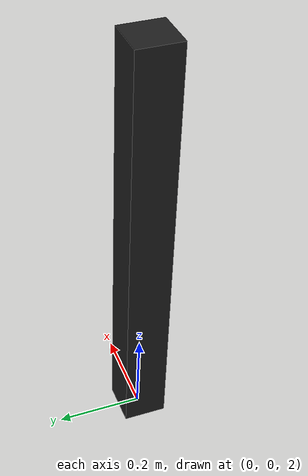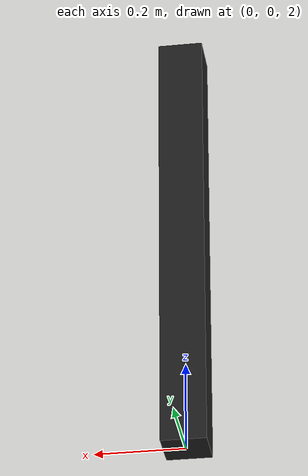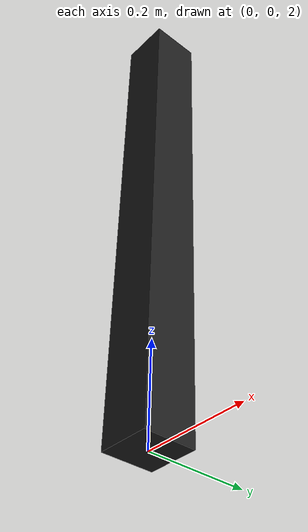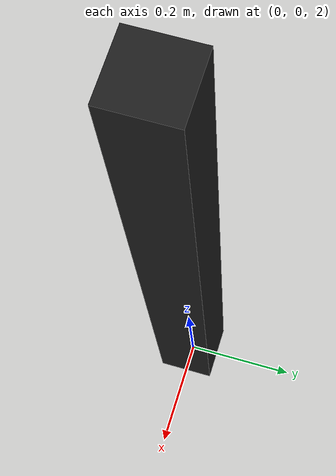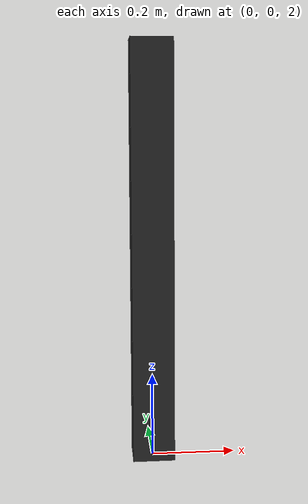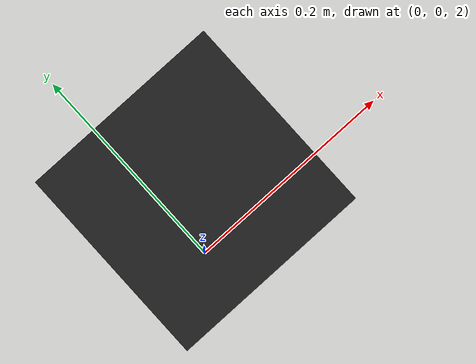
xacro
<?xml version="1.0"?>
<!-- Revolute-Revolute Manipulator -->
<robot name="custom_rrbot" xmlns:xacro="http://www.ros.org/wiki/xacro">

  <!-- Constants for robot dimensions -->
  <xacro:property name="PI" value="3.1415926535897931"/>
  <xacro:property name="mass" value="1" /> <!-- arbitrary value for mass -->
  <xacro:property name="width" value="0.1" /> <!-- Square dimensions (widthxwidth) of beams -->
  <xacro:property name="height1" value="2" /> <!-- Link 1 -->
  <xacro:property name="height2" value="1" /> <!-- Link 2 -->
  <xacro:property name="height3" value="1" /> <!-- Link 3 -->
  <xacro:property name="camera_link" value="0.05" /> <!-- Size of square 'camera' box -->
  <xacro:property name="axel_offset" value="0.05" /> <!-- Space btw top of beam and the each joint -->

  <!-- Import all Gazebo-customization elements, including Gazebo colors -->
  <xacro:include filename="$(find custom_rrbot_description)/gazebo/gazebo.urdf.xacro" />
  <!-- Import Rviz colors -->
  <xacro:include filename="$(find custom_rrbot_description)/urdf/materials.urdf.xacro" />

  <!-- Used for fixing robot to Gazebo 'base_link' -->
  <link name="world"/>

  <!-- Base Link -->

  <joint name="joint1" type="continuous">
    <parent link="world"/>
    <child link="link2"/>
    <origin xyz="0 0 ${height1}" rpy="0 0 0"/>
    <axis xyz="0 1 0"/>
    <dynamics damping="0.0"/>
  </joint>

  <!-- Middle Link -->
  <link name="link2">

    <visual>
      <origin xyz="0 0 ${height2/2}" rpy="0 0 0"/>
      <geometry>
      	<box size="${width} ${width} ${height2}"/>
      </geometry>
      <material name="black"/>
    </visual>

    <inertial>
      <origin xyz="0 0 ${height2/2}" rpy="0 0 0"/>
      <mass value="${mass / 2}"/>
      <inertia
        ixx="${(mass/2) / 12.0 * (width*width + height2*height2)}" ixy="0.0" ixz="0.0"
        iyy="${(mass/2) / 12.0 * (height2*height2 + width*width)}" iyz="0.0"
        izz="${(mass/2) / 12.0 * (width*width + width*width)}"/>
    </inertial>
  </link>

  <transmission name="tran1">
    <type>transmission_interface/SimpleTransmission</type>
    <joint name="joint1">
      <hardwareInterface>hardware_interface/PositionJointInterface</hardwareInterface>
    </joint>
    <actuator name="motor1">
      <hardwareInterface>hardware_interface/PositionJointInterface</hardwareInterface>
      <mechanicalReduction>1</mechanicalReduction>
    </actuator>
  </transmission>

</robot>
